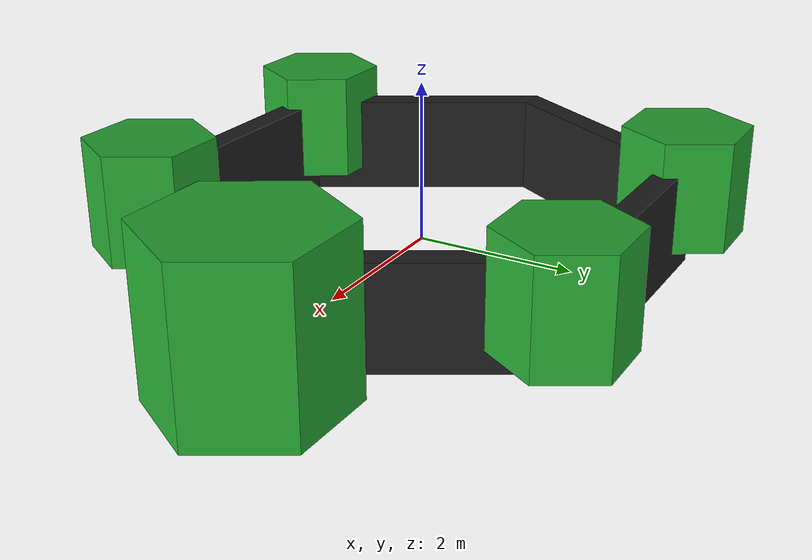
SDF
<sdf version='1.5'>
    <!-- Draw Circle -->
    <model name='turtlebot3_world_clean'>
      <static>1</static>
      <link name='symbol'>

        <!-- Draw Hexagon -->
        <collision name='head'>
          <pose>3.5 0 -0.5 0 0 0</pose>
          <geometry>
            <mesh>
              <uri>model://turtlebot3_world/meshes/hexagon.dae</uri>
              <scale>0.8 0.8 0.8</scale>
            </mesh>
          </geometry>
          <max_contacts>10</max_contacts>
          <surface>
            <bounce/>
            <friction>
              <ode/>
            </friction>
            <contact>
              <ode/>
            </contact>
          </surface>
        </collision>

        <visual name='head'>
          <pose>3.5 0 -0.5 0 0 0</pose>
          <geometry>
            <mesh>
              <uri>model://turtlebot3_world/meshes/hexagon.dae</uri>
              <scale>0.8 0.8 0.8</scale>
            </mesh>
          </geometry>
          <material>
            <script>
              <uri>file://media/materials/scripts/gazebo.material</uri>
              <name>Gazebo/Green</name>
            </script>
          </material>
        </visual>

        <collision name='left_hand'>
          <pose>1.8 2.7 0 0 0 0</pose>
          <geometry>
            <mesh>
              <uri>model://turtlebot3_world/meshes/hexagon.dae</uri>
              <scale>0.55 0.55 0.55</scale>
            </mesh>
          </geometry>
          <max_contacts>10</max_contacts>
          <surface>
            <bounce/>
            <friction>
              <ode/>
            </friction>
            <contact>
              <ode/>
            </contact>
          </surface>
        </collision>

        <visual name='left_hand'>
          <pose>1.8 2.7 0 0 0 0</pose>
          <geometry>
            <mesh>
              <uri>model://turtlebot3_world/meshes/hexagon.dae</uri>
              <scale>0.55 0.55 0.55</scale>
            </mesh>
          </geometry>
          <material>
            <script>
              <uri>file://media/materials/scripts/gazebo.material</uri>
              <name>Gazebo/Green</name>
            </script>
          </material>
        </visual>

        <collision name='right_hand'>
          <pose>1.8 -2.7 0 0 0 0</pose>
          <geometry>
            <mesh>
              <uri>model://turtlebot3_world/meshes/hexagon.dae</uri>
              <scale>0.55 0.55 0.55</scale>
            </mesh>
          </geometry>
          <max_contacts>10</max_contacts>
          <surface>
            <bounce/>
            <friction>
              <ode/>
            </friction>
            <contact>
              <ode/>
            </contact>
          </surface>
        </collision>

        <visual name='right_hand'>
          <pose>1.8 -2.7 0 0 0 0</pose>
          <geometry>
            <mesh>
              <uri>model://turtlebot3_world/meshes/hexagon.dae</uri>
              <scale>0.55 0.55 0.55</scale>
            </mesh>
          </geometry>
          <material>
            <script>
              <uri>file://media/materials/scripts/gazebo.material</uri>
              <name>Gazebo/Green</name>
            </script>
          </material>
        </visual>

        <collision name='left_foot'>
          <pose>-1.8 2.7 0 0 0 0</pose>
          <geometry>
            <mesh>
              <uri>model://turtlebot3_world/meshes/hexagon.dae</uri>
              <scale>0.55 0.55 0.55</scale>
            </mesh>
          </geometry>
          <max_contacts>10</max_contacts>
          <surface>
            <bounce/>
            <friction>
              <ode/>
            </friction>
            <contact>
              <ode/>
            </contact>
          </surface>
        </collision>

        <visual name='left_foot'>
          <pose>-1.8 2.7 0 0 0 0</pose>
          <geometry>
            <mesh>
              <uri>model://turtlebot3_world/meshes/hexagon.dae</uri>
              <scale>0.55 0.55 0.55</scale>
            </mesh>
          </geometry>
          <material>
            <script>
              <uri>file://media/materials/scripts/gazebo.material</uri>
              <name>Gazebo/Green</name>
            </script>
          </material>
        </visual>

        <collision name='right_foot'>
          <pose>-1.8 -2.7 0 0 0 0</pose>
          <geometry>
            <mesh>
              <uri>model://turtlebot3_world/meshes/hexagon.dae</uri>
              <scale>0.55 0.55 0.55</scale>
            </mesh>
          </geometry>
          <max_contacts>10</max_contacts>
          <surface>
            <bounce/>
            <friction>
              <ode/>
            </friction>
            <contact>
              <ode/>
            </contact>
          </surface>
        </collision>

        <visual name='right_foot'>
          <pose>-1.8 -2.7 0 0 0 0</pose>
          <geometry>
            <mesh>
              <uri>model://turtlebot3_world/meshes/hexagon.dae</uri>
              <scale>0.55 0.55 0.55</scale>
            </mesh>
          </geometry>
          <material>
            <script>
              <uri>file://media/materials/scripts/gazebo.material</uri>
              <name>Gazebo/Green</name>
            </script>
          </material>
        </visual>

        <!-- Draw Wall -->
        <collision name='body'>
        <pose>0 0 -0.3 0 0 -1.5708</pose>
        <geometry>
          <mesh>
            <uri>model://turtlebot3_world/meshes/wall.dae</uri>
            <scale>0.25 0.25 0.25</scale>
          </mesh>
        </geometry>
        <max_contacts>10</max_contacts>
        <surface>
          <bounce/>
          <friction>
            <ode/>
          </friction>
          <contact>
            <ode/>
          </contact>
        </surface>
      </collision>

      <visual name='body'>
        <pose>0 0 -0.3 0 0 -1.5708</pose>
        <geometry>
          <mesh>
            <uri>model://turtlebot3_world/meshes/wall.dae</uri>
            <scale>0.25 0.25 0.25</scale>
          </mesh>
        </geometry>
        <material>
          <script>
            <uri>file://media/materials/scripts/gazebo.material</uri>
            <name>Gazebo/FlatBlack</name>
          </script>
        </material>
      </visual>
    </link>
  </model>
</sdf>
